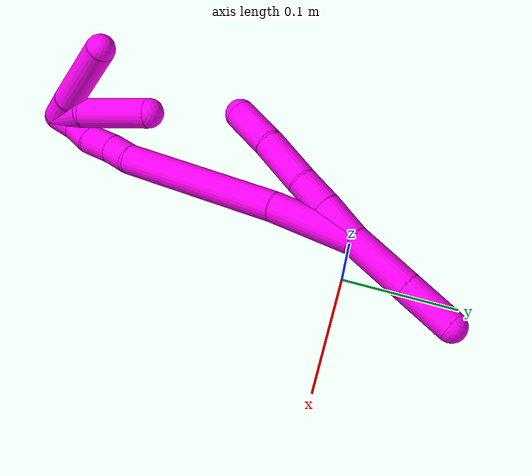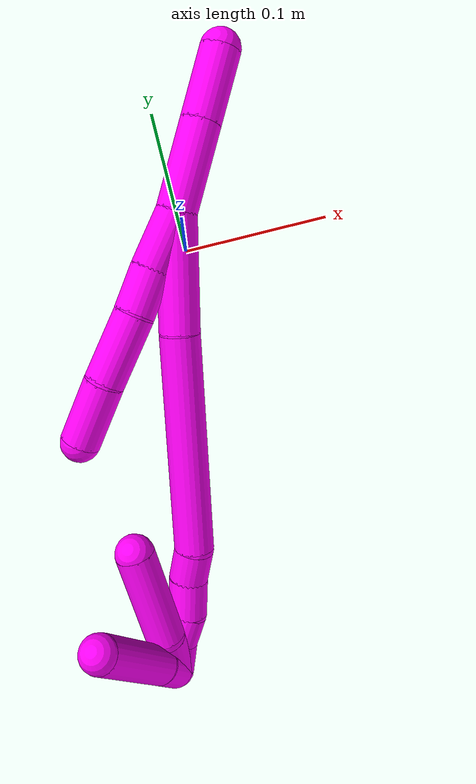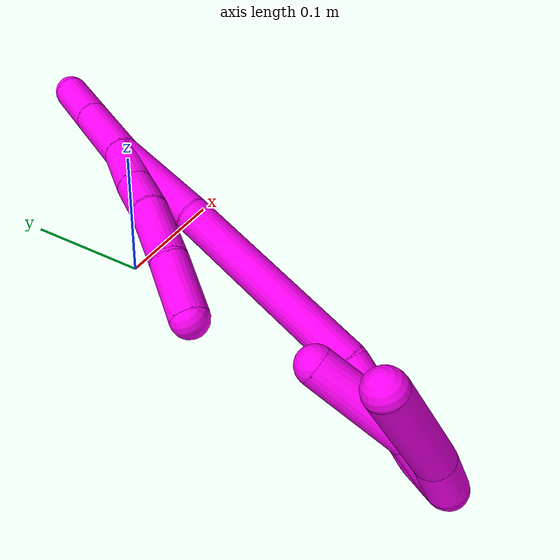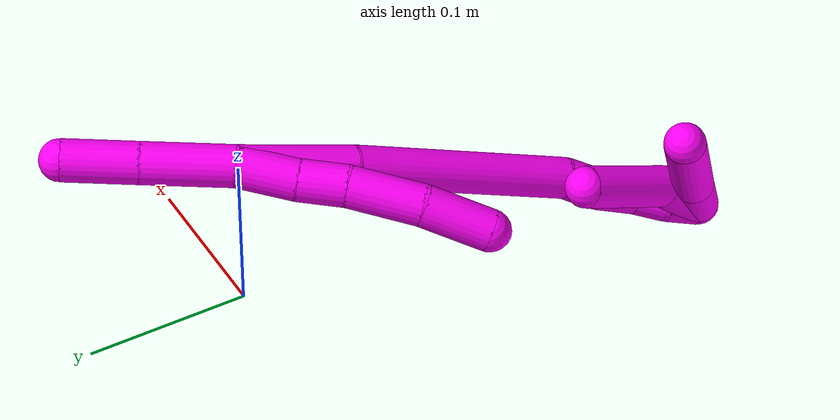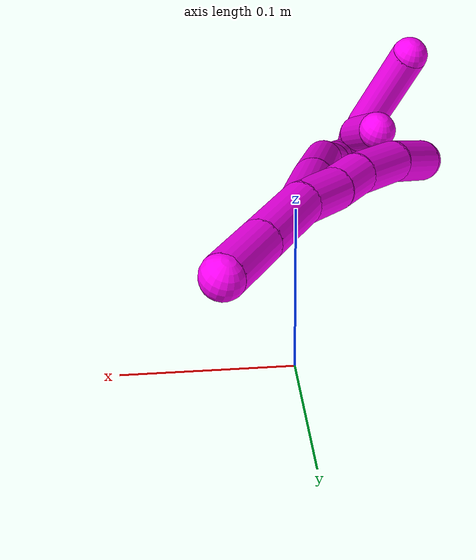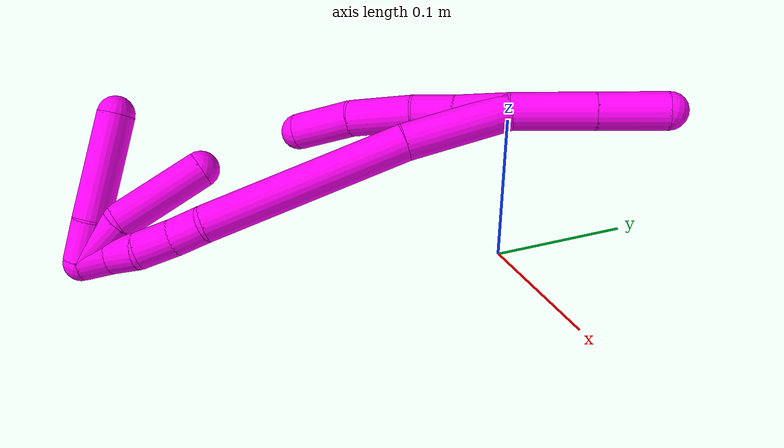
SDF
<sdf version="1.7">
 <world name="default">
  <model name="photoneo_s_sensor">
   <static>1</static>
   <pose>0 0 2 1.57079 1.57079 3.14159</pose>
   <link name="link">
    <inertial><mass>0.1</mass></inertial>
    <sensor name="sensor" type="depth">
     <update_rate>30</update_rate>
     <camera>
      <horizontal_fov>1.22</horizontal_fov>
      <image><width>1920</width><height>1200</height><format>B8G8R8</format></image>
      <clip><near>0.1</near><far>4</far></clip>
      <depth_camera><output>points</output></depth_camera>
     </camera>
     <plugin name="camera_plugin" filename="libgazebo_ros_depth_camera.so">
      <baseline>0.2</baseline>
      <alwaysOn>1</alwaysOn>
      <updateRate>0.0</updateRate>
      <cameraName>camera_ir</cameraName>
      <imageTopicName>/camera/color/image_raw</imageTopicName>
      <cameraInfoTopicName>/camera/color/camera_info</cameraInfoTopicName>
      <depthImageTopicName>/camera/depth/image_raw</depthImageTopicName>
      <depthImageCameraInfoTopicName>/camera/depth/camera_info</depthImageCameraInfoTopicName>
      <pointCloudTopicName>/camera/depth/points</pointCloudTopicName>
      <frameName>fr_optical</frameName>
      <pointCloudCutoff>0.1</pointCloudCutoff>
      <pointCloudCutoffMax>2.0</pointCloudCutoffMax>
      <distortionK1>0</distortionK1>
      <distortionK2>0</distortionK2>
      <distortionK3>0</distortionK3>
      <distortionT1>0</distortionT1>
      <distortionT2>0</distortionT2>
      <CxPrime>0</CxPrime>
      <Cx>0</Cx>
      <Cy>0</Cy>
      <focalLength>0</focalLength>
      <hackBaseline>0</hackBaseline>
     </plugin>
    </sensor>
   </link>
  </model>
  <model name="bin">
   <static>1</static>
   <link name="bottom">
    <collision name="collision-bottom">
     <pose>0 0 -0.01 0 -0 0</pose>
     <geometry><box><size>0.8 0.6 0.02</size></box></geometry>
     <surface>
      <friction><ode><mu>100</mu><mu2>100</mu2></ode></friction>
      <contact><collide_bitmask>65535</collide_bitmask></contact>
     </surface>
    </collision>
   </link>
   <link name="west_wall">
    <collision name="collision-west_wall">
     <pose>-0.41 0 0.1 0 -0 0</pose>
     <geometry><box><size>0.02 0.6 0.2</size></box></geometry>
     <surface>
      <friction><ode><mu>100</mu><mu2>100</mu2></ode></friction>
      <contact><collide_bitmask>65535</collide_bitmask></contact>
     </surface>
    </collision>
   </link>
   <link name="east_wall">
    <collision name="collision-east_wall">
     <pose>0.41 0 0.1 0 -0 0</pose>
     <geometry><box><size>0.02 0.6 0.2</size></box></geometry>
     <surface>
      <friction><ode><mu>100</mu><mu2>100</mu2></ode></friction>
      <contact><collide_bitmask>65535</collide_bitmask></contact>
     </surface>
    </collision>
   </link>
   <link name="south_wall">
    <collision name="collision-south_wall">
     <pose>0 -0.31 0.1 0 -0 0</pose>
     <geometry><box><size>0.8 0.02 0.2</size></box></geometry>
     <surface>
      <friction><ode><mu>100</mu><mu2>100</mu2></ode></friction>
      <contact><collide_bitmask>65535</collide_bitmask></contact>
     </surface>
    </collision>
   </link>
   <link name="north_wall">
    <collision name="collision-north_wall">
     <pose>0 0.31 0.1 0 -0 0</pose>
     <geometry><box><size>0.8 0.02 0.2</size></box></geometry>
     <surface>
      <friction><ode><mu>100</mu><mu2>100</mu2></ode></friction>
      <contact><collide_bitmask>65535</collide_bitmask></contact>
     </surface>
    </collision>
   </link>
  </model>
  <model name="10">
   <static>0</static>
   <link name="10">
    <collision name="collision-cylinder-e_1_2_8">
     <pose>-0.012689 -0.011745 -0.005269 1.99249 -0.778193 -1.12909</pose>
     <geometry><cylinder><radius>0.0125</radius><length>0.03615</length></cylinder></geometry>
     <surface>
      <friction><ode><mu>1.16</mu><mu2>1.16</mu2><slip1>0</slip1><slip2>0</slip2></ode></friction>
      <contact><ode><kp>1e+06</kp><kd>1</kd><max_vel>0</max_vel><min_depth>0.001</min_depth></ode></contact>
     </surface>
    </collision>
    <visual name="visual-cylinder-e_1_2_8">
     <pose>-0.012689 -0.011745 -0.005269 1.99249 -0.778193 -1.12909</pose>
     <geometry><cylinder><radius>0.0125</radius><length>0.03615</length></cylinder></geometry>
     <material><ambient>1 0 0.964706 1</ambient></material>
    </visual>
    <collision name="collision-cylinder-e_2_8_9">
     <pose>-0.034489 -0.033732 -0.014152 1.91002 -0.698071 -0.95012</pose>
     <geometry><cylinder><radius>0.0125</radius><length>0.028353</length></cylinder></geometry>
     <surface>
      <friction><ode><mu>1.16</mu><mu2>1.16</mu2><slip1>0</slip1><slip2>0</slip2></ode></friction>
      <contact><ode><kp>1e+06</kp><kd>1</kd><max_vel>0</max_vel><min_depth>0.001</min_depth></ode></contact>
     </surface>
    </collision>
    <visual name="visual-cylinder-e_2_8_9">
     <pose>-0.034489 -0.033732 -0.014152 1.91002 -0.698071 -0.95012</pose>
     <geometry><cylinder><radius>0.0125</radius><length>0.028353</length></cylinder></geometry>
     <material><ambient>1 0 0.964706 1</ambient></material>
    </visual>
    <collision name="collision-cylinder-e_3_9_10">
     <pose>-0.059202 -0.057955 -0.025012 2.04894 -0.780705 -1.18982</pose>
     <geometry><cylinder><radius>0.0125</radius><length>0.044334</length></cylinder></geometry>
     <surface>
      <friction><ode><mu>1.16</mu><mu2>1.16</mu2><slip1>0</slip1><slip2>0</slip2></ode></friction>
      <contact><ode><kp>1e+06</kp><kd>1</kd><max_vel>0</max_vel><min_depth>0.001</min_depth></ode></contact>
     </surface>
    </collision>
    <visual name="visual-cylinder-e_3_9_10">
     <pose>-0.059202 -0.057955 -0.025012 2.04894 -0.780705 -1.18982</pose>
     <geometry><cylinder><radius>0.0125</radius><length>0.044334</length></cylinder></geometry>
     <material><ambient>1 0 0.964706 1</ambient></material>
    </visual>
    <collision name="collision-cylinder-e_4_10_6">
     <pose>-0.089153 -0.083255 -0.041721 2.26714 -0.77155 -1.43074</pose>
     <geometry><cylinder><radius>0.0125</radius><length>0.041162</length></cylinder></geometry>
     <surface>
      <friction><ode><mu>1.16</mu><mu2>1.16</mu2><slip1>0</slip1><slip2>0</slip2></ode></friction>
      <contact><ode><kp>1e+06</kp><kd>1</kd><max_vel>0</max_vel><min_depth>0.001</min_depth></ode></contact>
     </surface>
    </collision>
    <visual name="visual-cylinder-e_4_10_6">
     <pose>-0.089153 -0.083255 -0.041721 2.26714 -0.77155 -1.43074</pose>
     <geometry><cylinder><radius>0.0125</radius><length>0.041162</length></cylinder></geometry>
     <material><ambient>1 0 0.964706 1</ambient></material>
    </visual>
    <collision name="collision-cylinder-e_1_2_11">
     <pose>0.015367 0.02154 0.007299 -1.24408 0.594207 -0.432181</pose>
     <geometry><cylinder><radius>0.0125</radius><length>0.054895</length></cylinder></geometry>
     <surface>
      <friction><ode><mu>1.16</mu><mu2>1.16</mu2><slip1>0</slip1><slip2>0</slip2></ode></friction>
      <contact><ode><kp>1e+06</kp><kd>1</kd><max_vel>0</max_vel><min_depth>0.001</min_depth></ode></contact>
     </surface>
    </collision>
    <visual name="visual-cylinder-e_1_2_11">
     <pose>0.015367 0.02154 0.007299 -1.24408 0.594207 -0.432181</pose>
     <geometry><cylinder><radius>0.0125</radius><length>0.054895</length></cylinder></geometry>
     <material><ambient>1 0 0.964706 1</ambient></material>
    </visual>
    <collision name="collision-cylinder-e_2_11_5">
     <pose>0.04338 0.060742 0.020658 -1.24029 0.595318 -0.431334</pose>
     <geometry><cylinder><radius>0.0125</radius><length>0.045105</length></cylinder></geometry>
     <surface>
      <friction><ode><mu>1.16</mu><mu2>1.16</mu2><slip1>0</slip1><slip2>0</slip2></ode></friction>
      <contact><ode><kp>1e+06</kp><kd>1</kd><max_vel>0</max_vel><min_depth>0.001</min_depth></ode></contact>
     </surface>
    </collision>
    <visual name="visual-cylinder-e_2_11_5">
     <pose>0.04338 0.060742 0.020658 -1.24029 0.595318 -0.431334</pose>
     <geometry><cylinder><radius>0.0125</radius><length>0.045105</length></cylinder></geometry>
     <material><ambient>1 0 0.964706 1</ambient></material>
    </visual>
    <collision name="collision-cylinder-e_1_2_12">
     <pose>-0.012065 -0.027888 -0.018699 2.16145 -0.344961 -0.631281</pose>
     <geometry><cylinder><radius>0.0125</radius><length>0.071359</length></cylinder></geometry>
     <surface>
      <friction><ode><mu>1.16</mu><mu2>1.16</mu2><slip1>0</slip1><slip2>0</slip2></ode></friction>
      <contact><ode><kp>1e+06</kp><kd>1</kd><max_vel>0</max_vel><min_depth>0.001</min_depth></ode></contact>
     </surface>
    </collision>
    <visual name="visual-cylinder-e_1_2_12">
     <pose>-0.012065 -0.027888 -0.018699 2.16145 -0.344961 -0.631281</pose>
     <geometry><cylinder><radius>0.0125</radius><length>0.071359</length></cylinder></geometry>
     <material><ambient>1 0 0.964706 1</ambient></material>
    </visual>
    <collision name="collision-cylinder-e_2_12_13">
     <pose>-0.046164 -0.106891 -0.079843 2.26379 -0.320221 -0.662665</pose>
     <geometry><cylinder><radius>0.0125</radius><length>0.139994</length></cylinder></geometry>
     <surface>
      <friction><ode><mu>1.16</mu><mu2>1.16</mu2><slip1>0</slip1><slip2>0</slip2></ode></friction>
      <contact><ode><kp>1e+06</kp><kd>1</kd><max_vel>0</max_vel><min_depth>0.001</min_depth></ode></contact>
     </surface>
    </collision>
    <visual name="visual-cylinder-e_2_12_13">
     <pose>-0.046164 -0.106891 -0.079843 2.26379 -0.320221 -0.662665</pose>
     <geometry><cylinder><radius>0.0125</radius><length>0.139994</length></cylinder></geometry>
     <material><ambient>1 0 0.964706 1</ambient></material>
    </visual>
    <collision name="collision-cylinder-e_3_13_14">
     <pose>-0.074137 -0.164428 -0.129383 2.40584 -0.555381 -1.27362</pose>
     <geometry><cylinder><radius>0.0125</radius><length>0.022529</length></cylinder></geometry>
     <surface>
      <friction><ode><mu>1.16</mu><mu2>1.16</mu2><slip1>0</slip1><slip2>0</slip2></ode></friction>
      <contact><ode><kp>1e+06</kp><kd>1</kd><max_vel>0</max_vel><min_depth>0.001</min_depth></ode></contact>
     </surface>
    </collision>
    <visual name="visual-cylinder-e_3_13_14">
     <pose>-0.074137 -0.164428 -0.129383 2.40584 -0.555381 -1.27362</pose>
     <geometry><cylinder><radius>0.0125</radius><length>0.022529</length></cylinder></geometry>
     <material><ambient>1 0 0.964706 1</ambient></material>
    </visual>
    <collision name="collision-cylinder-e_4_14_15">
     <pose>-0.085132 -0.179903 -0.144034 2.26638 -0.405135 -0.827317</pose>
     <geometry><cylinder><radius>0.0125</radius><length>0.025655</length></cylinder></geometry>
     <surface>
      <friction><ode><mu>1.16</mu><mu2>1.16</mu2><slip1>0</slip1><slip2>0</slip2></ode></friction>
      <contact><ode><kp>1e+06</kp><kd>1</kd><max_vel>0</max_vel><min_depth>0.001</min_depth></ode></contact>
     </surface>
    </collision>
    <visual name="visual-cylinder-e_4_14_15">
     <pose>-0.085132 -0.179903 -0.144034 2.26638 -0.405135 -0.827317</pose>
     <geometry><cylinder><radius>0.0125</radius><length>0.025655</length></cylinder></geometry>
     <material><ambient>1 0 0.964706 1</ambient></material>
    </visual>
    <collision name="collision-cylinder-e_5_15_16">
     <pose>-0.096466 -0.195488 -0.155871 2.15084 -0.676863 -1.15475</pose>
     <geometry><cylinder><radius>0.0125</radius><length>0.020046</length></cylinder></geometry>
     <surface>
      <friction><ode><mu>1.16</mu><mu2>1.16</mu2><slip1>0</slip1><slip2>0</slip2></ode></friction>
      <contact><ode><kp>1e+06</kp><kd>1</kd><max_vel>0</max_vel><min_depth>0.001</min_depth></ode></contact>
     </surface>
    </collision>
    <visual name="visual-cylinder-e_5_15_16">
     <pose>-0.096466 -0.195488 -0.155871 2.15084 -0.676863 -1.15475</pose>
     <geometry><cylinder><radius>0.0125</radius><length>0.020046</length></cylinder></geometry>
     <material><ambient>1 0 0.964706 1</ambient></material>
    </visual>
    <collision name="collision-cylinder-e_6_16_1">
     <pose>-0.107516 -0.209619 -0.165026 2.14123 -0.48641 -0.852315</pose>
     <geometry><cylinder><radius>0.0125</radius><length>0.020416</length></cylinder></geometry>
     <surface>
      <friction><ode><mu>1.16</mu><mu2>1.16</mu2><slip1>0</slip1><slip2>0</slip2></ode></friction>
      <contact><ode><kp>1e+06</kp><kd>1</kd><max_vel>0</max_vel><min_depth>0.001</min_depth></ode></contact>
     </surface>
    </collision>
    <visual name="visual-cylinder-e_6_16_1">
     <pose>-0.107516 -0.209619 -0.165026 2.14123 -0.48641 -0.852315</pose>
     <geometry><cylinder><radius>0.0125</radius><length>0.020416</length></cylinder></geometry>
     <material><ambient>1 0 0.964706 1</ambient></material>
    </visual>
    <collision name="collision-cylinder-e_1_1_17">
     <pose>-0.112667 -0.217523 -0.155855 0.021952 -0.027002 -0.000296</pose>
     <geometry><cylinder><radius>0.0125</radius><length>0.028106</length></cylinder></geometry>
     <surface>
      <friction><ode><mu>1.16</mu><mu2>1.16</mu2><slip1>0</slip1><slip2>0</slip2></ode></friction>
      <contact><ode><kp>1e+06</kp><kd>1</kd><max_vel>0</max_vel><min_depth>0.001</min_depth></ode></contact>
     </surface>
    </collision>
    <visual name="visual-cylinder-e_1_1_17">
     <pose>-0.112667 -0.217523 -0.155855 0.021952 -0.027002 -0.000296</pose>
     <geometry><cylinder><radius>0.0125</radius><length>0.028106</length></cylinder></geometry>
     <material><ambient>1 0 0.964706 1</ambient></material>
    </visual>
    <collision name="collision-cylinder-e_2_17_4">
     <pose>-0.118247 -0.21701 -0.106251 -0.023094 -0.145158 0.001679</pose>
     <geometry><cylinder><radius>0.0125</radius><length>0.071894</length></cylinder></geometry>
     <surface>
      <friction><ode><mu>1.16</mu><mu2>1.16</mu2><slip1>0</slip1><slip2>0</slip2></ode></friction>
      <contact><ode><kp>1e+06</kp><kd>1</kd><max_vel>0</max_vel><min_depth>0.001</min_depth></ode></contact>
     </surface>
    </collision>
    <visual name="visual-cylinder-e_2_17_4">
     <pose>-0.118247 -0.21701 -0.106251 -0.023094 -0.145158 0.001679</pose>
     <geometry><cylinder><radius>0.0125</radius><length>0.071894</length></cylinder></geometry>
     <material><ambient>1 0 0.964706 1</ambient></material>
    </visual>
    <collision name="collision-cylinder-e_1_1_18">
     <pose>-0.108184 -0.209912 -0.154038 -0.431466 0.230812 -0.050796</pose>
     <geometry><cylinder><radius>0.0125</radius><length>0.035875</length></cylinder></geometry>
     <surface>
      <friction><ode><mu>1.16</mu><mu2>1.16</mu2><slip1>0</slip1><slip2>0</slip2></ode></friction>
      <contact><ode><kp>1e+06</kp><kd>1</kd><max_vel>0</max_vel><min_depth>0.001</min_depth></ode></contact>
     </surface>
    </collision>
    <visual name="visual-cylinder-e_1_1_18">
     <pose>-0.108184 -0.209912 -0.154038 -0.431466 0.230812 -0.050796</pose>
     <geometry><cylinder><radius>0.0125</radius><length>0.035875</length></cylinder></geometry>
     <material><ambient>1 0 0.964706 1</ambient></material>
    </visual>
    <collision name="collision-cylinder-e_2_18_3">
     <pose>-0.100739 -0.180945 -0.114778 -0.746946 0.104409 -0.040946</pose>
     <geometry><cylinder><radius>0.0125</radius><length>0.064125</length></cylinder></geometry>
     <surface>
      <friction><ode><mu>1.16</mu><mu2>1.16</mu2><slip1>0</slip1><slip2>0</slip2></ode></friction>
      <contact><ode><kp>1e+06</kp><kd>1</kd><max_vel>0</max_vel><min_depth>0.001</min_depth></ode></contact>
     </surface>
    </collision>
    <visual name="visual-cylinder-e_2_18_3">
     <pose>-0.100739 -0.180945 -0.114778 -0.746946 0.104409 -0.040946</pose>
     <geometry><cylinder><radius>0.0125</radius><length>0.064125</length></cylinder></geometry>
     <material><ambient>1 0 0.964706 1</ambient></material>
    </visual>
    <collision name="collision-sphere-3">
     <pose>-0.097398 -0.15928 -0.09138 0 -0 0</pose>
     <geometry><sphere><radius>0.0125</radius></sphere></geometry>
     <surface>
      <friction><ode><mu>1.16</mu><mu2>1.16</mu2><slip1>0</slip1><slip2>0</slip2></ode></friction>
      <contact><ode><kp>1e+06</kp><kd>1</kd><max_vel>0</max_vel><min_depth>0.001</min_depth></ode></contact>
     </surface>
    </collision>
    <visual name="visual-sphere-3">
     <pose>-0.097398 -0.15928 -0.09138 0 -0 0</pose>
     <geometry><sphere><radius>0.0125</radius></sphere></geometry>
     <material><ambient>1 0 0.964706 1</ambient></material>
    </visual>
    <collision name="collision-sphere-11">
     <pose>0.030733 0.04308 0.014598 0 -0 0</pose>
     <geometry><sphere><radius>0.0125</radius></sphere></geometry>
     <surface>
      <friction><ode><mu>1.16</mu><mu2>1.16</mu2><slip1>0</slip1><slip2>0</slip2></ode></friction>
      <contact><ode><kp>1e+06</kp><kd>1</kd><max_vel>0</max_vel><min_depth>0.001</min_depth></ode></contact>
     </surface>
    </collision>
    <visual name="visual-sphere-11">
     <pose>0.030733 0.04308 0.014598 0 -0 0</pose>
     <geometry><sphere><radius>0.0125</radius></sphere></geometry>
     <material><ambient>1 0 0.964706 1</ambient></material>
    </visual>
    <collision name="collision-sphere-6">
     <pose>-0.103503 -0.094574 -0.051184 0 -0 0</pose>
     <geometry><sphere><radius>0.0125</radius></sphere></geometry>
     <surface>
      <friction><ode><mu>1.16</mu><mu2>1.16</mu2><slip1>0</slip1><slip2>0</slip2></ode></friction>
      <contact><ode><kp>1e+06</kp><kd>1</kd><max_vel>0</max_vel><min_depth>0.001</min_depth></ode></contact>
     </surface>
    </collision>
    <visual name="visual-sphere-6">
     <pose>-0.103503 -0.094574 -0.051184 0 -0 0</pose>
     <geometry><sphere><radius>0.0125</radius></sphere></geometry>
     <material><ambient>1 0 0.964706 1</ambient></material>
    </visual>
    <collision name="collision-sphere-10">
     <pose>-0.074803 -0.071937 -0.032258 0 -0 0</pose>
     <geometry><sphere><radius>0.0125</radius></sphere></geometry>
     <surface>
      <friction><ode><mu>1.16</mu><mu2>1.16</mu2><slip1>0</slip1><slip2>0</slip2></ode></friction>
      <contact><ode><kp>1e+06</kp><kd>1</kd><max_vel>0</max_vel><min_depth>0.001</min_depth></ode></contact>
     </surface>
    </collision>
    <visual name="visual-sphere-10">
     <pose>-0.074803 -0.071937 -0.032258 0 -0 0</pose>
     <geometry><sphere><radius>0.0125</radius></sphere></geometry>
     <material><ambient>1 0 0.964706 1</ambient></material>
    </visual>
    <collision name="collision-sphere-9">
     <pose>-0.043601 -0.043973 -0.017766 0 -0 0</pose>
     <geometry><sphere><radius>0.0125</radius></sphere></geometry>
     <surface>
      <friction><ode><mu>1.16</mu><mu2>1.16</mu2><slip1>0</slip1><slip2>0</slip2></ode></friction>
      <contact><ode><kp>1e+06</kp><kd>1</kd><max_vel>0</max_vel><min_depth>0.001</min_depth></ode></contact>
     </surface>
    </collision>
    <visual name="visual-sphere-9">
     <pose>-0.043601 -0.043973 -0.017766 0 -0 0</pose>
     <geometry><sphere><radius>0.0125</radius></sphere></geometry>
     <material><ambient>1 0 0.964706 1</ambient></material>
    </visual>
    <collision name="collision-sphere-2">
     <geometry><sphere><radius>0.0125</radius></sphere></geometry>
     <surface>
      <friction><ode><mu>1.16</mu><mu2>1.16</mu2><slip1>0</slip1><slip2>0</slip2></ode></friction>
      <contact><ode><kp>1e+06</kp><kd>1</kd><max_vel>0</max_vel><min_depth>0.001</min_depth></ode></contact>
     </surface>
    </collision>
    <visual name="visual-sphere-2">
     <geometry><sphere><radius>0.0125</radius></sphere></geometry>
     <material><ambient>1 0 0.964706 1</ambient></material>
    </visual>
    <collision name="collision-sphere-8">
     <pose>-0.025377 -0.02349 -0.010538 0 -0 0</pose>
     <geometry><sphere><radius>0.0125</radius></sphere></geometry>
     <surface>
      <friction><ode><mu>1.16</mu><mu2>1.16</mu2><slip1>0</slip1><slip2>0</slip2></ode></friction>
      <contact><ode><kp>1e+06</kp><kd>1</kd><max_vel>0</max_vel><min_depth>0.001</min_depth></ode></contact>
     </surface>
    </collision>
    <visual name="visual-sphere-8">
     <pose>-0.025377 -0.02349 -0.010538 0 -0 0</pose>
     <geometry><sphere><radius>0.0125</radius></sphere></geometry>
     <material><ambient>1 0 0.964706 1</ambient></material>
    </visual>
    <collision name="collision-sphere-5">
     <pose>0.056027 0.078404 0.026718 0 -0 0</pose>
     <geometry><sphere><radius>0.0125</radius></sphere></geometry>
     <surface>
      <friction><ode><mu>1.16</mu><mu2>1.16</mu2><slip1>0</slip1><slip2>0</slip2></ode></friction>
      <contact><ode><kp>1e+06</kp><kd>1</kd><max_vel>0</max_vel><min_depth>0.001</min_depth></ode></contact>
     </surface>
    </collision>
    <visual name="visual-sphere-5">
     <pose>0.056027 0.078404 0.026718 0 -0 0</pose>
     <geometry><sphere><radius>0.0125</radius></sphere></geometry>
     <material><ambient>1 0 0.964706 1</ambient></material>
    </visual>
    <collision name="collision-sphere-12">
     <pose>-0.024131 -0.055777 -0.037399 0 -0 0</pose>
     <geometry><sphere><radius>0.0125</radius></sphere></geometry>
     <surface>
      <friction><ode><mu>1.16</mu><mu2>1.16</mu2><slip1>0</slip1><slip2>0</slip2></ode></friction>
      <contact><ode><kp>1e+06</kp><kd>1</kd><max_vel>0</max_vel><min_depth>0.001</min_depth></ode></contact>
     </surface>
    </collision>
    <visual name="visual-sphere-12">
     <pose>-0.024131 -0.055777 -0.037399 0 -0 0</pose>
     <geometry><sphere><radius>0.0125</radius></sphere></geometry>
     <material><ambient>1 0 0.964706 1</ambient></material>
    </visual>
    <collision name="collision-sphere-13">
     <pose>-0.068197 -0.158004 -0.122287 0 -0 0</pose>
     <geometry><sphere><radius>0.0125</radius></sphere></geometry>
     <surface>
      <friction><ode><mu>1.16</mu><mu2>1.16</mu2><slip1>0</slip1><slip2>0</slip2></ode></friction>
      <contact><ode><kp>1e+06</kp><kd>1</kd><max_vel>0</max_vel><min_depth>0.001</min_depth></ode></contact>
     </surface>
    </collision>
    <visual name="visual-sphere-13">
     <pose>-0.068197 -0.158004 -0.122287 0 -0 0</pose>
     <geometry><sphere><radius>0.0125</radius></sphere></geometry>
     <material><ambient>1 0 0.964706 1</ambient></material>
    </visual>
    <collision name="collision-sphere-14">
     <pose>-0.080076 -0.170852 -0.136479 0 -0 0</pose>
     <geometry><sphere><radius>0.0125</radius></sphere></geometry>
     <surface>
      <friction><ode><mu>1.16</mu><mu2>1.16</mu2><slip1>0</slip1><slip2>0</slip2></ode></friction>
      <contact><ode><kp>1e+06</kp><kd>1</kd><max_vel>0</max_vel><min_depth>0.001</min_depth></ode></contact>
     </surface>
    </collision>
    <visual name="visual-sphere-14">
     <pose>-0.080076 -0.170852 -0.136479 0 -0 0</pose>
     <geometry><sphere><radius>0.0125</radius></sphere></geometry>
     <material><ambient>1 0 0.964706 1</ambient></material>
    </visual>
    <collision name="collision-sphere-15">
     <pose>-0.090188 -0.188953 -0.151589 0 -0 0</pose>
     <geometry><sphere><radius>0.0125</radius></sphere></geometry>
     <surface>
      <friction><ode><mu>1.16</mu><mu2>1.16</mu2><slip1>0</slip1><slip2>0</slip2></ode></friction>
      <contact><ode><kp>1e+06</kp><kd>1</kd><max_vel>0</max_vel><min_depth>0.001</min_depth></ode></contact>
     </surface>
    </collision>
    <visual name="visual-sphere-15">
     <pose>-0.090188 -0.188953 -0.151589 0 -0 0</pose>
     <geometry><sphere><radius>0.0125</radius></sphere></geometry>
     <material><ambient>1 0 0.964706 1</ambient></material>
    </visual>
    <collision name="collision-sphere-16">
     <pose>-0.102744 -0.202024 -0.160153 0 -0 0</pose>
     <geometry><sphere><radius>0.0125</radius></sphere></geometry>
     <surface>
      <friction><ode><mu>1.16</mu><mu2>1.16</mu2><slip1>0</slip1><slip2>0</slip2></ode></friction>
      <contact><ode><kp>1e+06</kp><kd>1</kd><max_vel>0</max_vel><min_depth>0.001</min_depth></ode></contact>
     </surface>
    </collision>
    <visual name="visual-sphere-16">
     <pose>-0.102744 -0.202024 -0.160153 0 -0 0</pose>
     <geometry><sphere><radius>0.0125</radius></sphere></geometry>
     <material><ambient>1 0 0.964706 1</ambient></material>
    </visual>
    <collision name="collision-sphere-1">
     <pose>-0.112288 -0.217215 -0.169899 0 -0 0</pose>
     <geometry><sphere><radius>0.0125</radius></sphere></geometry>
     <surface>
      <friction><ode><mu>1.16</mu><mu2>1.16</mu2><slip1>0</slip1><slip2>0</slip2></ode></friction>
      <contact><ode><kp>1e+06</kp><kd>1</kd><max_vel>0</max_vel><min_depth>0.001</min_depth></ode></contact>
     </surface>
    </collision>
    <visual name="visual-sphere-1">
     <pose>-0.112288 -0.217215 -0.169899 0 -0 0</pose>
     <geometry><sphere><radius>0.0125</radius></sphere></geometry>
     <material><ambient>1 0 0.964706 1</ambient></material>
    </visual>
    <collision name="collision-sphere-18">
     <pose>-0.104081 -0.202609 -0.138176 0 -0 0</pose>
     <geometry><sphere><radius>0.0125</radius></sphere></geometry>
     <surface>
      <friction><ode><mu>1.16</mu><mu2>1.16</mu2><slip1>0</slip1><slip2>0</slip2></ode></friction>
      <contact><ode><kp>1e+06</kp><kd>1</kd><max_vel>0</max_vel><min_depth>0.001</min_depth></ode></contact>
     </surface>
    </collision>
    <visual name="visual-sphere-18">
     <pose>-0.104081 -0.202609 -0.138176 0 -0 0</pose>
     <geometry><sphere><radius>0.0125</radius></sphere></geometry>
     <material><ambient>1 0 0.964706 1</ambient></material>
    </visual>
    <collision name="collision-sphere-17">
     <pose>-0.113047 -0.217831 -0.14181 0 -0 0</pose>
     <geometry><sphere><radius>0.0125</radius></sphere></geometry>
     <surface>
      <friction><ode><mu>1.16</mu><mu2>1.16</mu2><slip1>0</slip1><slip2>0</slip2></ode></friction>
      <contact><ode><kp>1e+06</kp><kd>1</kd><max_vel>0</max_vel><min_depth>0.001</min_depth></ode></contact>
     </surface>
    </collision>
    <visual name="visual-sphere-17">
     <pose>-0.113047 -0.217831 -0.14181 0 -0 0</pose>
     <geometry><sphere><radius>0.0125</radius></sphere></geometry>
     <material><ambient>1 0 0.964706 1</ambient></material>
    </visual>
    <collision name="collision-sphere-4">
     <pose>-0.123446 -0.216189 -0.070691 0 -0 0</pose>
     <geometry><sphere><radius>0.0125</radius></sphere></geometry>
     <surface>
      <friction><ode><mu>1.16</mu><mu2>1.16</mu2><slip1>0</slip1><slip2>0</slip2></ode></friction>
      <contact><ode><kp>1e+06</kp><kd>1</kd><max_vel>0</max_vel><min_depth>0.001</min_depth></ode></contact>
     </surface>
    </collision>
    <visual name="visual-sphere-4">
     <pose>-0.123446 -0.216189 -0.070691 0 -0 0</pose>
     <geometry><sphere><radius>0.0125</radius></sphere></geometry>
     <material><ambient>1 0 0.964706 1</ambient></material>
    </visual>
    <inertial>
     <pose>-0.056329 -0.103702 -0.070143 0 -0 0</pose>
     <mass>0.75</mass>
     <inertia>
      <ixx>9.6e-05</ixx>
      <ixy>0</ixy>
      <ixz>0</ixz>
      <iyy>-0.00021</iyy>
      <iyz>0</iyz>
      <izz>0.000269</izz>
     </inertia>
    </inertial>
   </link>
   <pose>-0.002575 0.002411 0.104805 -0.401162 -0.196446 0.088114</pose>
  </model>
 </world>
</sdf>
